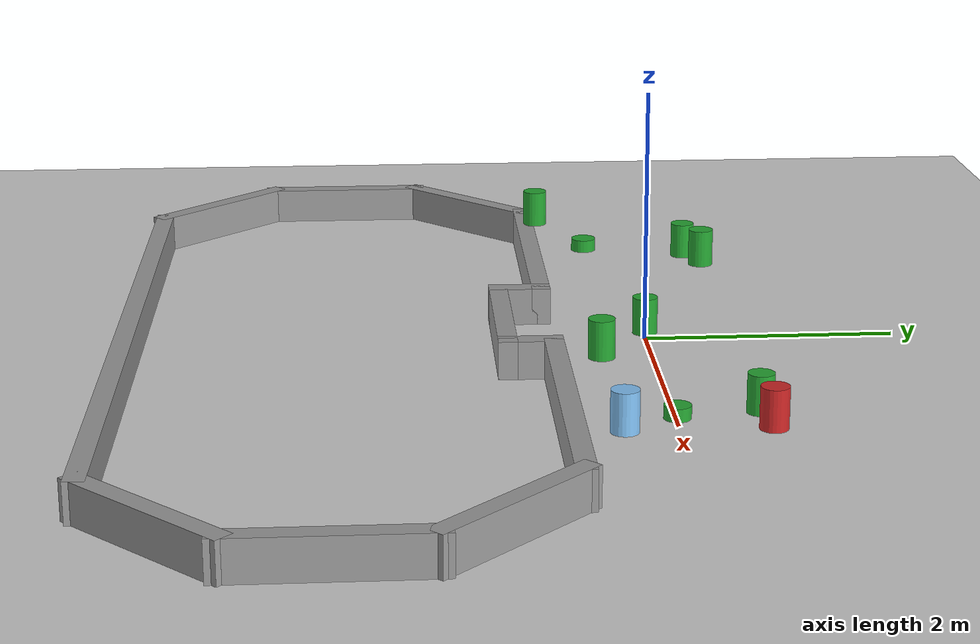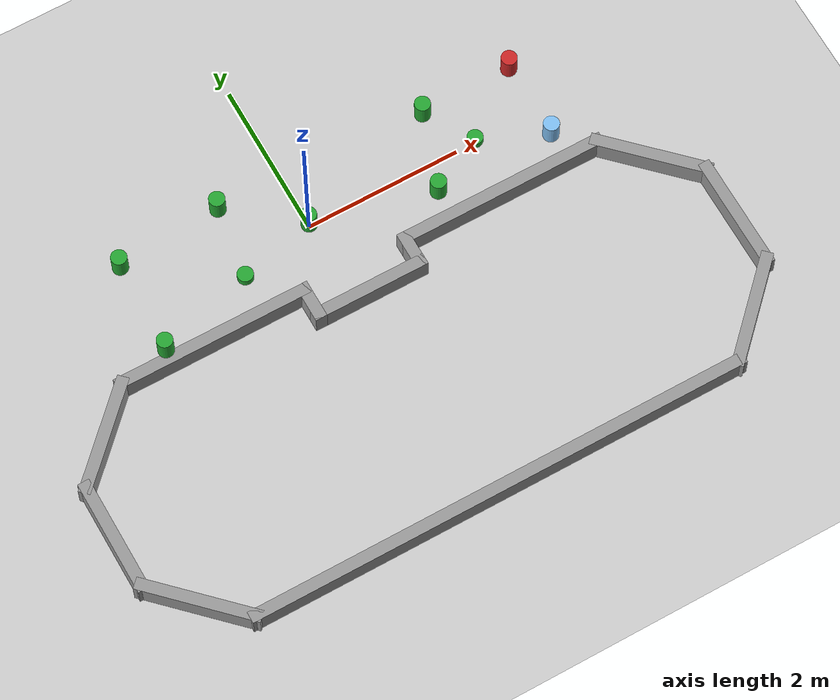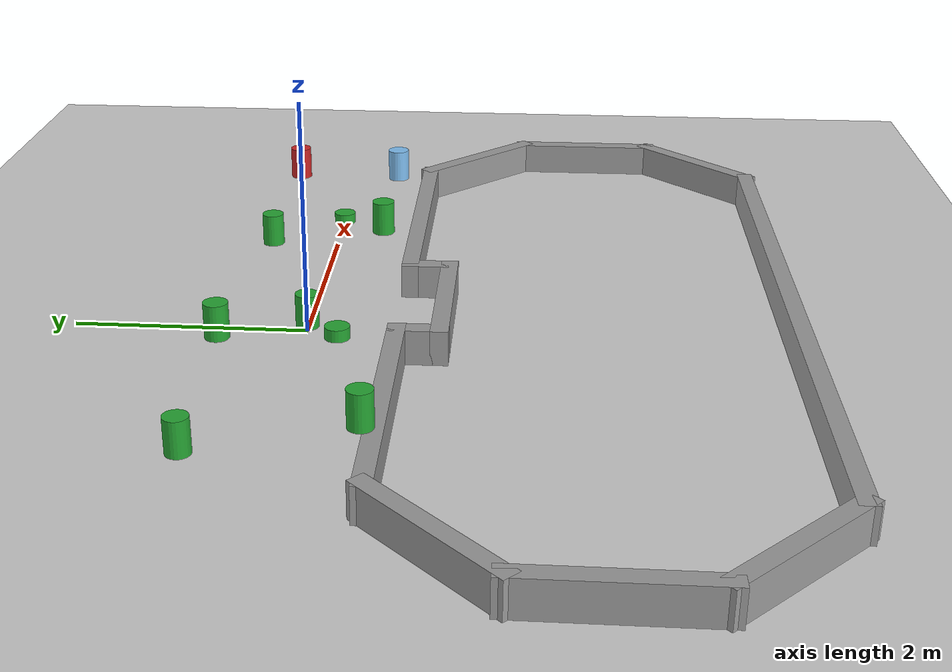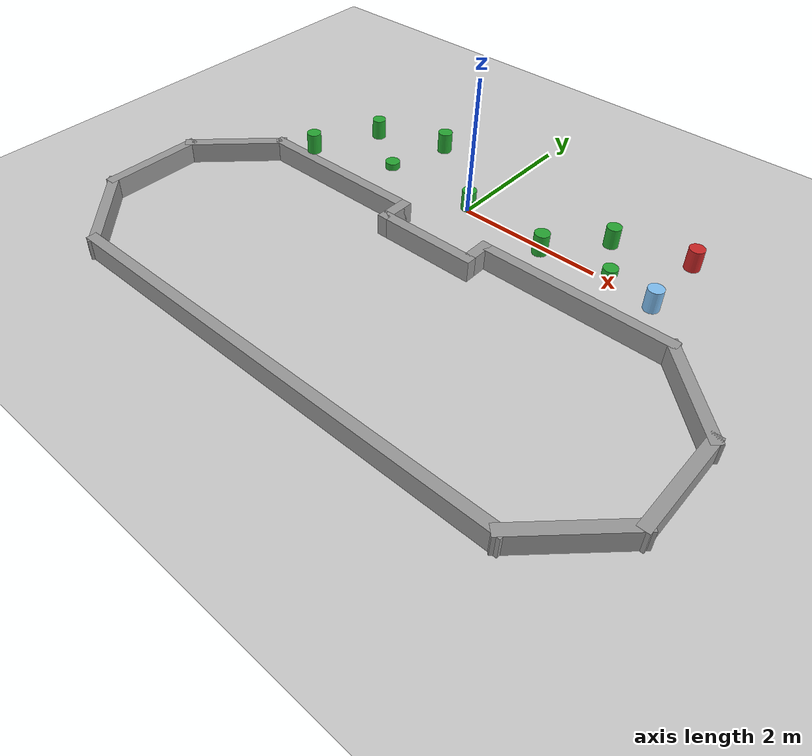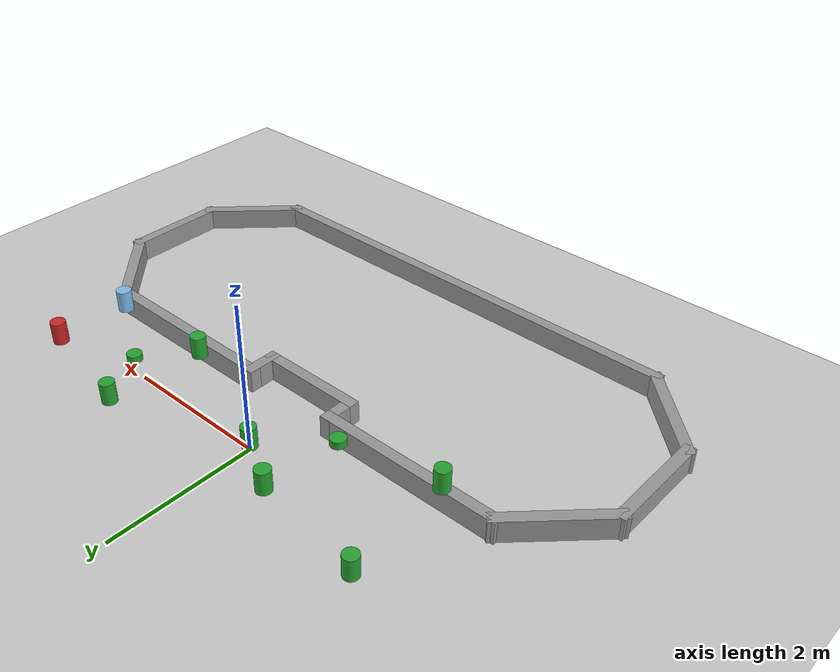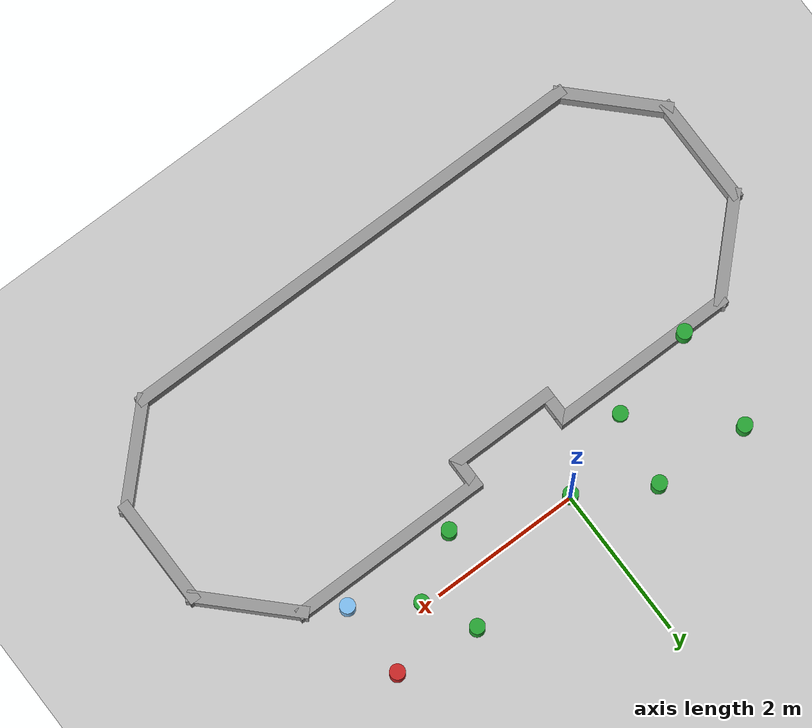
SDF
<sdf version="1.6">
 <world name="default">
  <include><uri>model://sun</uri></include>
  <include><uri>model://ground_plane</uri></include>
  <gravity>0 0 -9.8</gravity>
  <physics type="ode">
   <real_time_update_rate>100.0</real_time_update_rate>
   <max_step_size>0.01</max_step_size>
   <real_time_factor>1</real_time_factor>
   <ode>
    <solver>
     <type>quick</type>
     <iters>150</iters>
     <precon_iters>0</precon_iters>
     <sor>1.400000</sor>
     <use_dynamic_moi_rescaling>1</use_dynamic_moi_rescaling>
    </solver>
    <constraints>
     <cfm>0.00001</cfm>
     <erp>0.2</erp>
     <contact_max_correcting_vel>2000.000000</contact_max_correcting_vel>
     <contact_surface_layer>0.01000</contact_surface_layer>
    </constraints>
   </ode>
  </physics>
  <scene><ambient>0.4 0.4 0.4 1</ambient><background>0.7 0.7 0.7 1</background><shadows>false</shadows></scene>
  <model name="goal_red">
   <pose>3.0 0.5 0.5 0 0 0</pose>
   <link name="link">
    <inertial>
     <mass>1</mass>
     <inertia><ixx>0.145833</ixx><ixy>0</ixy><ixz>0</ixz><iyy>0.145833</iyy><iyz>0</iyz><izz>0.125</izz></inertia>
    </inertial>
    <collision name="collision">
     <geometry><cylinder><radius>0.1</radius><length>0.3</length></cylinder></geometry>
    </collision>
    <visual name="visual">
     <geometry><cylinder><radius>0.1</radius><length>0.3</length></cylinder></geometry>
     <material>
      <script><name>Gazebo/Red</name><uri>file://media/materials/scripts/gazebo.material</uri></script>
     </material>
    </visual>
   </link>
  </model>
  <model name="goal_blue">
   <pose>3.0 -0.5 0.5 0 0 0</pose>
   <link name="link">
    <inertial>
     <mass>1</mass>
     <inertia><ixx>0.145833</ixx><ixy>0</ixy><ixz>0</ixz><iyy>0.145833</iyy><iyz>0</iyz><izz>0.125</izz></inertia>
    </inertial>
    <collision name="collision">
     <geometry><cylinder><radius>0.1</radius><length>0.3</length></cylinder></geometry>
    </collision>
    <visual name="visual">
     <geometry><cylinder><radius>0.1</radius><length>0.3</length></cylinder></geometry>
     <material>
      <script><name>Gazebo/SkyBlue</name><uri>file://media/materials/scripts/gazebo.material</uri></script>
     </material>
    </visual>
   </link>
  </model>
  <model name="unit_cylinder_1">
   <pose>-1.05 -0.4 0.5 0 0 0</pose>
   <link name="link">
    <inertial>
     <mass>1</mass>
     <inertia><ixx>0.145833</ixx><ixy>0</ixy><ixz>0</ixz><iyy>0.145833</iyy><iyz>0</iyz><izz>0.125</izz></inertia>
    </inertial>
    <collision name="collision">
     <geometry><cylinder><radius>0.1</radius><length>0.1</length></cylinder></geometry>
    </collision>
    <visual name="visual">
     <geometry><cylinder><radius>0.1</radius><length>0.1</length></cylinder></geometry>
     <material>
      <script><name>Gazebo/Green</name><uri>file://media/materials/scripts/gazebo.material</uri></script>
     </material>
    </visual>
   </link>
  </model>
  <model name="unit_cylinder_2">
   <pose>1.47 -0.5 0.5 0 0 0</pose>
   <link name="link">
    <inertial>
     <mass>1</mass>
     <inertia><ixx>0.145833</ixx><ixy>0</ixy><ixz>0</ixz><iyy>0.145833</iyy><iyz>0</iyz><izz>0.125</izz></inertia>
    </inertial>
    <collision name="collision">
     <geometry><cylinder><radius>0.1</radius><length>0.3</length></cylinder></geometry>
    </collision>
    <visual name="visual">
     <geometry><cylinder><radius>0.1</radius><length>0.3</length></cylinder></geometry>
     <material>
      <script><name>Gazebo/Green</name><uri>file://media/materials/scripts/gazebo.material</uri></script>
     </material>
    </visual>
   </link>
  </model>
  <model name="unit_cylinder_3">
   <pose>-0.9 0.57 0.5 0 0 0</pose>
   <link name="link">
    <inertial>
     <mass>1</mass>
     <inertia><ixx>0.145833</ixx><ixy>0</ixy><ixz>0</ixz><iyy>0.145833</iyy><iyz>0</iyz><izz>0.125</izz></inertia>
    </inertial>
    <collision name="collision">
     <geometry><cylinder><radius>0.1</radius><length>0.3</length></cylinder></geometry>
    </collision>
    <visual name="visual">
     <geometry><cylinder><radius>0.1</radius><length>0.3</length></cylinder></geometry>
     <material>
      <script><name>Gazebo/Green</name><uri>file://media/materials/scripts/gazebo.material</uri></script>
     </material>
    </visual>
   </link>
  </model>
  <model name="unit_cylinder_4">
   <pose>-2.27 -0.72 0.5 0 0 0</pose>
   <link name="link">
    <inertial>
     <mass>1</mass>
     <inertia><ixx>0.145833</ixx><ixy>0</ixy><ixz>0</ixz><iyy>0.145833</iyy><iyz>0</iyz><izz>0.125</izz></inertia>
    </inertial>
    <collision name="collision">
     <geometry><cylinder><radius>0.1</radius><length>0.3</length></cylinder></geometry>
    </collision>
    <visual name="visual">
     <geometry><cylinder><radius>0.1</radius><length>0.3</length></cylinder></geometry>
     <material>
      <script><name>Gazebo/Green</name><uri>file://media/materials/scripts/gazebo.material</uri></script>
     </material>
    </visual>
   </link>
  </model>
  <model name="unit_cylinder_5">
   <pose>-2.2 0.6 0.2 0 0 0</pose>
   <link name="link">
    <inertial>
     <mass>1</mass>
     <inertia><ixx>0.145833</ixx><ixy>0</ixy><ixz>0</ixz><iyy>0.145833</iyy><iyz>0</iyz><izz>0.125</izz></inertia>
    </inertial>
    <collision name="collision">
     <geometry><cylinder><radius>0.1</radius><length>0.3</length></cylinder></geometry>
    </collision>
    <visual name="visual">
     <geometry><cylinder><radius>0.1</radius><length>0.3</length></cylinder></geometry>
     <material>
      <script><name>Gazebo/Green</name><uri>file://media/materials/scripts/gazebo.material</uri></script>
     </material>
    </visual>
   </link>
  </model>
  <model name="unit_cylinder_6">
   <pose>1.88 0.61 0.2 0 0 0</pose>
   <link name="link">
    <inertial>
     <mass>1</mass>
     <inertia><ixx>0.145833</ixx><ixy>0</ixy><ixz>0</ixz><iyy>0.145833</iyy><iyz>0</iyz><izz>0.125</izz></inertia>
    </inertial>
    <collision name="collision">
     <geometry><cylinder><radius>0.1</radius><length>0.3</length></cylinder></geometry>
    </collision>
    <visual name="visual">
     <geometry><cylinder><radius>0.1</radius><length>0.3</length></cylinder></geometry>
     <material>
      <script><name>Gazebo/Green</name><uri>file://media/materials/scripts/gazebo.material</uri></script>
     </material>
    </visual>
   </link>
  </model>
  <model name="unit_cylinder_7">
   <pose>0.0 0.0 0.2 0 0 0</pose>
   <link name="link">
    <inertial>
     <mass>1</mass>
     <inertia><ixx>0.145833</ixx><ixy>0</ixy><ixz>0</ixz><iyy>0.145833</iyy><iyz>0</iyz><izz>0.125</izz></inertia>
    </inertial>
    <collision name="collision">
     <geometry><cylinder><radius>0.1</radius><length>0.3</length></cylinder></geometry>
    </collision>
    <visual name="visual">
     <geometry><cylinder><radius>0.1</radius><length>0.3</length></cylinder></geometry>
     <material>
      <script><name>Gazebo/Green</name><uri>file://media/materials/scripts/gazebo.material</uri></script>
     </material>
    </visual>
   </link>
  </model>
  <model name="unit_cylinder_8">
   <pose>2.23 -0.04 0.2 0 0 0</pose>
   <link name="link">
    <inertial>
     <mass>1</mass>
     <inertia><ixx>0.145833</ixx><ixy>0</ixy><ixz>0</ixz><iyy>0.145833</iyy><iyz>0</iyz><izz>0.125</izz></inertia>
    </inertial>
    <collision name="collision">
     <geometry><cylinder><radius>0.1</radius><length>0.1</length></cylinder></geometry>
    </collision>
    <visual name="visual">
     <geometry><cylinder><radius>0.1</radius><length>0.1</length></cylinder></geometry>
     <material>
      <script><name>Gazebo/Green</name><uri>file://media/materials/scripts/gazebo.material</uri></script>
     </material>
    </visual>
   </link>
  </model>
  <model name="Untitled">
   <pose>0.275 -2.42959 0 0 0 0</pose>
   <link name="Wall_0">
    <collision name="Wall_0_Collision">
     <geometry><box><size>1.5 0.15 0.3</size></box></geometry>
     <pose>0 0 0.15 0 0 0</pose>
    </collision>
    <visual name="Wall_0_Visual">
     <pose>0 0 0.15 0 0 0</pose>
     <geometry><box><size>1.5 0.15 0.3</size></box></geometry>
     <material>
      <script><uri>file://media/materials/scripts/gazebo.material</uri><name>Gazebo/Gray</name></script>
      <ambient>1 1 1 1</ambient>
     </material>
     <meta><layer>0</layer></meta>
    </visual>
    <pose>-3.6523 1.1523 0 0 0 -2.35619</pose>
   </link>
   <link name="Wall_1">
    <collision name="Wall_1_Collision">
     <geometry><box><size>1.5 0.15 0.3</size></box></geometry>
     <pose>0 0 0.15 0 0 0</pose>
    </collision>
    <visual name="Wall_1_Visual">
     <pose>0 0 0.15 0 0 0</pose>
     <geometry><box><size>1.5 0.15 0.3</size></box></geometry>
     <material>
      <script><uri>file://media/materials/scripts/gazebo.material</uri><name>Gazebo/Gray</name></script>
      <ambient>1 1 1 1</ambient>
     </material>
     <meta><layer>0</layer></meta>
    </visual>
    <pose>-4.12959 0 0 0 0 -1.5708</pose>
   </link>
   <link name="Wall_10">
    <collision name="Wall_10_Collision">
     <geometry><box><size>0.5 0.15 0.3</size></box></geometry>
     <pose>0 0 0.15 0 0 0</pose>
    </collision>
    <visual name="Wall_10_Visual">
     <pose>0 0 0.15 0 0 0</pose>
     <geometry><box><size>0.5 0.15 0.3</size></box></geometry>
     <material>
      <script><uri>file://media/materials/scripts/gazebo.material</uri><name>Gazebo/Gray</name></script>
      <ambient>1 1 1 1</ambient>
     </material>
     <meta><layer>0</layer></meta>
    </visual>
    <pose>-0.775 1.45459 0 0 0 1.5708</pose>
   </link>
   <link name="Wall_11">
    <collision name="Wall_11_Collision">
     <geometry><box><size>2.55 0.15 0.3</size></box></geometry>
     <pose>0 0 0.15 0 0 0</pose>
    </collision>
    <visual name="Wall_11_Visual">
     <pose>0 0 0.15 0 0 0</pose>
     <geometry><box><size>2.55 0.15 0.3</size></box></geometry>
     <material>
      <script><uri>file://media/materials/scripts/gazebo.material</uri><name>Gazebo/Gray</name></script>
      <ambient>1 1 1 1</ambient>
     </material>
     <meta><layer>0</layer></meta>
    </visual>
    <pose>-1.975 1.62959 0 0 0 3.14159</pose>
   </link>
   <link name="Wall_2">
    <collision name="Wall_2_Collision">
     <geometry><box><size>1.5 0.15 0.3</size></box></geometry>
     <pose>0 0 0.15 0 0 0</pose>
    </collision>
    <visual name="Wall_2_Visual">
     <pose>0 0 0.15 0 0 0</pose>
     <geometry><box><size>1.5 0.15 0.3</size></box></geometry>
     <material>
      <script><uri>file://media/materials/scripts/gazebo.material</uri><name>Gazebo/Gray</name></script>
      <ambient>1 1 1 1</ambient>
     </material>
     <meta><layer>0</layer></meta>
    </visual>
    <pose>-3.6523 -1.1523 0 0 0 -0.785398</pose>
   </link>
   <link name="Wall_3">
    <collision name="Wall_3_Collision">
     <geometry><box><size>6.5 0.15 0.3</size></box></geometry>
     <pose>0 0 0.15 0 0 0</pose>
    </collision>
    <visual name="Wall_3_Visual">
     <pose>0 0 0.15 0 0 0</pose>
     <geometry><box><size>6.5 0.15 0.3</size></box></geometry>
     <material>
      <script><uri>file://media/materials/scripts/gazebo.material</uri><name>Gazebo/Gray</name></script>
      <ambient>1 1 1 1</ambient>
     </material>
     <meta><layer>0</layer></meta>
    </visual>
    <pose>0 -1.62959 0 0 0 0</pose>
   </link>
   <link name="Wall_4">
    <collision name="Wall_4_Collision">
     <geometry><box><size>1.5 0.15 0.3</size></box></geometry>
     <pose>0 0 0.15 0 0 0</pose>
    </collision>
    <visual name="Wall_4_Visual">
     <pose>0 0 0.15 0 0 0</pose>
     <geometry><box><size>1.5 0.15 0.3</size></box></geometry>
     <material>
      <script><uri>file://media/materials/scripts/gazebo.material</uri><name>Gazebo/Gray</name></script>
      <ambient>1 1 1 1</ambient>
     </material>
     <meta><layer>0</layer></meta>
    </visual>
    <pose>3.6523 -1.1523 0 0 0 0.785398</pose>
   </link>
   <link name="Wall_5">
    <collision name="Wall_5_Collision">
     <geometry><box><size>1.5 0.15 0.3</size></box></geometry>
     <pose>0 0 0.15 0 0 0</pose>
    </collision>
    <visual name="Wall_5_Visual">
     <pose>0 0 0.15 0 0 0</pose>
     <geometry><box><size>1.5 0.15 0.3</size></box></geometry>
     <material>
      <script><uri>file://media/materials/scripts/gazebo.material</uri><name>Gazebo/Gray</name></script>
      <ambient>1 1 1 1</ambient>
     </material>
     <meta><layer>0</layer></meta>
    </visual>
    <pose>4.12959 0 0 0 0 1.5708</pose>
   </link>
   <link name="Wall_6">
    <collision name="Wall_6_Collision">
     <geometry><box><size>1.5 0.15 0.3</size></box></geometry>
     <pose>0 0 0.15 0 0 0</pose>
    </collision>
    <visual name="Wall_6_Visual">
     <pose>0 0 0.15 0 0 0</pose>
     <geometry><box><size>1.5 0.15 0.3</size></box></geometry>
     <material>
      <script><uri>file://media/materials/scripts/gazebo.material</uri><name>Gazebo/Gray</name></script>
      <ambient>1 1 1 1</ambient>
     </material>
     <meta><layer>0</layer></meta>
    </visual>
    <pose>3.6523 1.1523 0 0 0 2.35619</pose>
   </link>
   <link name="Wall_7">
    <collision name="Wall_7_Collision">
     <geometry><box><size>2.75 0.15 0.3</size></box></geometry>
     <pose>0 0 0.15 0 0 0</pose>
    </collision>
    <visual name="Wall_7_Visual">
     <pose>0 0 0.15 0 0 0</pose>
     <geometry><box><size>2.75 0.15 0.3</size></box></geometry>
     <material>
      <script><uri>file://media/materials/scripts/gazebo.material</uri><name>Gazebo/Gray</name></script>
      <ambient>1 1 1 1</ambient>
     </material>
     <meta><layer>0</layer></meta>
    </visual>
    <pose>1.875 1.62959 0 0 0 3.14159</pose>
   </link>
   <link name="Wall_8">
    <collision name="Wall_8_Collision">
     <geometry><box><size>0.5 0.15 0.3</size></box></geometry>
     <pose>0 0 0.15 0 0 0</pose>
    </collision>
    <visual name="Wall_8_Visual">
     <pose>0 0 0.15 0 0 0</pose>
     <geometry><box><size>0.5 0.15 0.3</size></box></geometry>
     <material>
      <script><uri>file://media/materials/scripts/gazebo.material</uri><name>Gazebo/Gray</name></script>
      <ambient>1 1 1 1</ambient>
     </material>
     <meta><layer>0</layer></meta>
    </visual>
    <pose>0.575 1.45459 0 0 0 -1.5708</pose>
   </link>
   <link name="Wall_9">
    <collision name="Wall_9_Collision">
     <geometry><box><size>1.5 0.15 0.3</size></box></geometry>
     <pose>0 0 0.15 0 0 0</pose>
    </collision>
    <visual name="Wall_9_Visual">
     <pose>0 0 0.15 0 0 0</pose>
     <geometry><box><size>1.5 0.15 0.3</size></box></geometry>
     <material>
      <script><uri>file://media/materials/scripts/gazebo.material</uri><name>Gazebo/Gray</name></script>
      <ambient>1 1 1 1</ambient>
     </material>
     <meta><layer>0</layer></meta>
    </visual>
    <pose>-0.1 1.27959 0 0 0 3.14159</pose>
   </link>
   <static>1</static>
  </model>
 </world>
</sdf>
